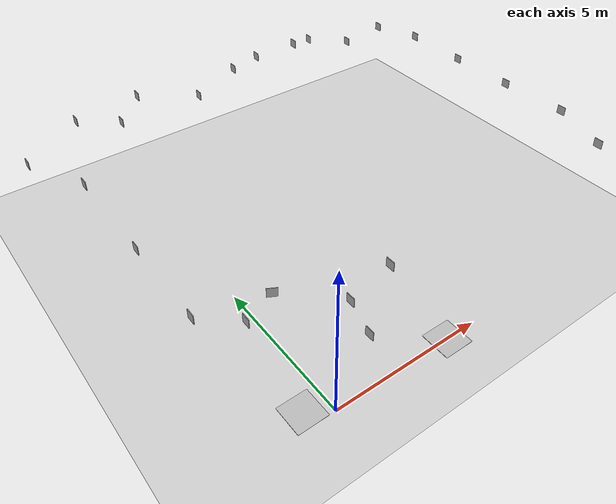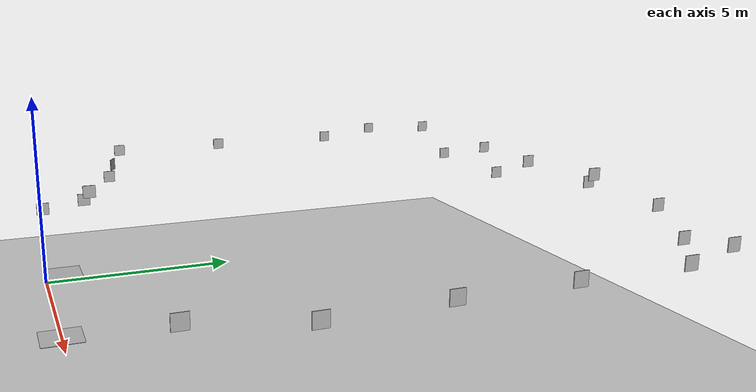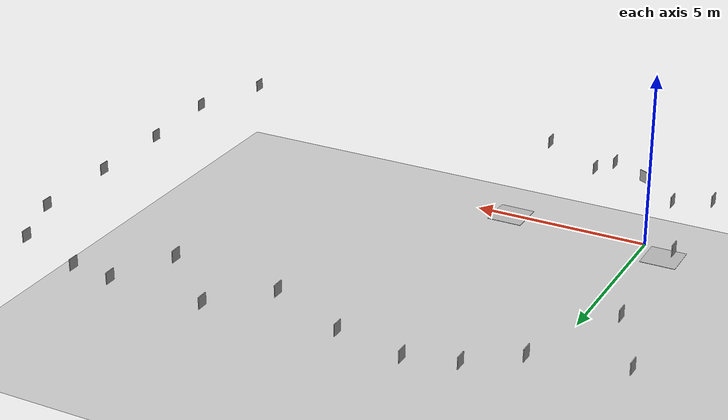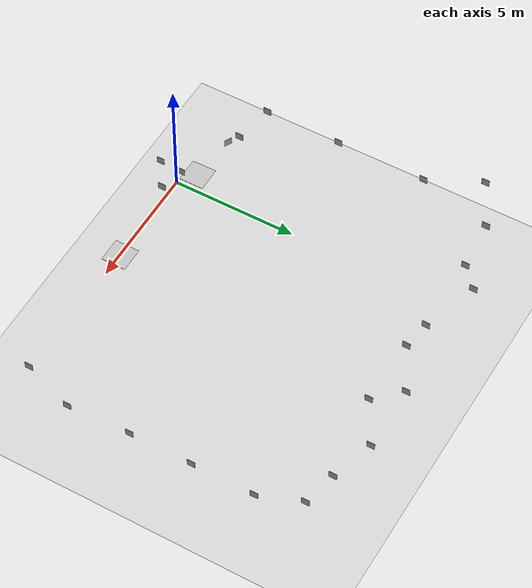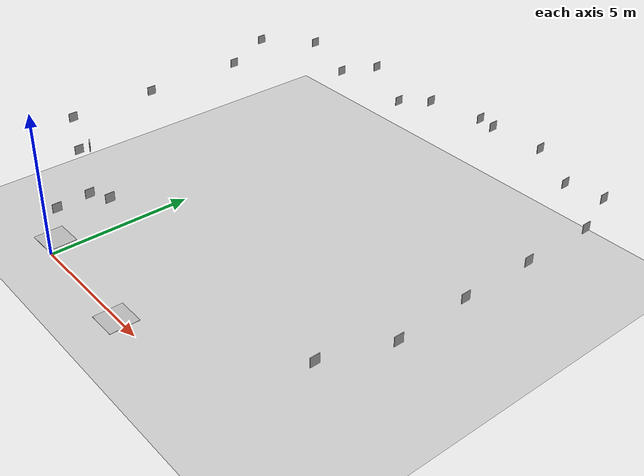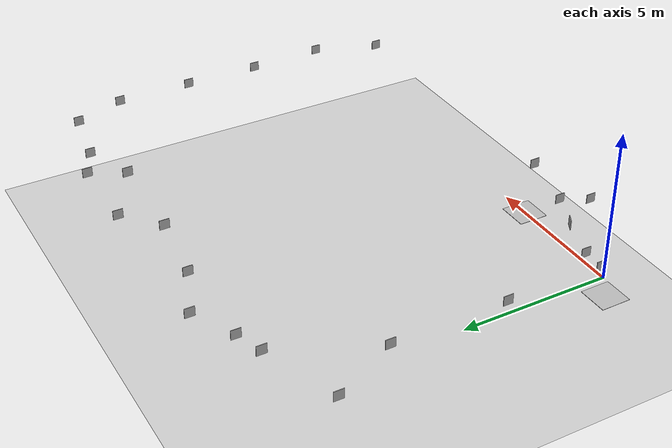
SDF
<sdf version="1.6">
 <world name="default">
  <model name="ground_plane">
   <static>1</static>
   <link name="link">
    <collision name="collision">
     <geometry><plane><normal>0 0 1</normal><size>100 100</size></plane></geometry>
     <surface>
      <contact><collide_bitmask>65535</collide_bitmask></contact>
      <friction><ode><mu>100</mu><mu2>50</mu2></ode></friction>
     </surface>
    </collision>
    <visual name="visual">
     <cast_shadows>0</cast_shadows>
     <geometry><plane><normal>0 0 1</normal><size>100 100</size></plane></geometry>
     <material>
      <script><uri>file://media/materials/scripts/gazebo.material</uri><name>Gazebo/Grey</name></script>
     </material>
    </visual>
   </link>
  </model>
  <light name="sun" type="directional">
   <pose>0 0 10 0 -0 0</pose>
   <diffuse>0.8 0.8 0.8 1</diffuse>
   <specular>0.2 0.2 0.2 1</specular>
   <attenuation>
    <range>1000</range>
    <constant>0.9</constant>
    <linear>0.01</linear>
    <quadratic>0.001</quadratic>
   </attenuation>
   <direction>-0.5 0.1 -0.9</direction>
  </light>
  <model name="color_beacon">
   <link name="link_1">
    <inertial>
     <mass>1</mass>
     <inertia>
      <ixx>0.166667</ixx>
      <ixy>0</ixy>
      <ixz>0</ixz>
      <iyy>0.166667</iyy>
      <iyz>0</iyz>
      <izz>0.166667</izz>
     </inertia>
    </inertial>
    <visual name="visual">
     <geometry><box><size>1 1 0.01</size></box></geometry>
     <material>
      <script>
       <uri>model://color_beacon/materials/scripts</uri>
       <uri>model://color_beacon/materials/textures</uri>
       <name>color_beacon</name>
      </script>
     </material>
    </visual>
    <collision name="collision">
     <geometry><box><size>1 1 0.01</size></box></geometry>
     <surface>
      <friction>
       <ode><mu>1</mu><mu2>1</mu2><fdir1>0 0 0</fdir1><slip1>0</slip1><slip2>0</slip2></ode>
       <torsional>
        <coefficient>1</coefficient>
        <patch_radius>0</patch_radius>
        <surface_radius>0</surface_radius>
        <use_patch_radius>1</use_patch_radius>
        <ode><slip>0</slip></ode>
       </torsional>
      </friction>
      <bounce><restitution_coefficient>0</restitution_coefficient><threshold>1e+06</threshold></bounce>
      <contact>
       <collide_without_contact>0</collide_without_contact>
       <collide_without_contact_bitmask>1</collide_without_contact_bitmask>
       <collide_bitmask>1</collide_bitmask>
       <ode>
        <soft_cfm>0</soft_cfm>
        <soft_erp>0.2</soft_erp>
        <kp>1e+13</kp>
        <kd>1</kd>
        <max_vel>0.01</max_vel>
        <min_depth>0</min_depth>
       </ode>
       <bullet>
        <split_impulse>1</split_impulse>
        <split_impulse_penetration_threshold>-0.01</split_impulse_penetration_threshold>
        <soft_cfm>0</soft_cfm>
        <soft_erp>0.2</soft_erp>
        <kp>1e+13</kp>
        <kd>1</kd>
       </bullet>
      </contact>
     </surface>
    </collision>
   </link>
   <static>0</static>
   <pose>4 0 0.005 0 -0 0</pose>
  </model>
  <model name="posAprilTags">
   <model name="tag_0">
    <pose>-0.5 2 3 -2.07079 -1.57079 3.14159</pose>
    <static>1</static>
    <link name="link">
     <collision name="collision"><geometry><box><size>0.3 0.3 0.02</size></box></geometry></collision>
     <visual name="visual">
      <geometry><box><size>0.3 0.3 0.02</size></box></geometry>
      <material>
       <script><uri>file://tags_material/scripts/tags.material</uri><name>Tag36_11_00000</name></script>
      </material>
     </visual>
    </link>
    <static>0</static>
   </model>
   <model name="tag_1">
    <pose>2.5 1 3 3.14159 -1.57079 3.14159</pose>
    <static>1</static>
    <link name="link">
     <collision name="collision"><geometry><box><size>0.3 0.3 0.02</size></box></geometry></collision>
     <visual name="visual">
      <geometry><box><size>0.3 0.3 0.02</size></box></geometry>
      <material>
       <script><uri>file://tags_material/scripts/tags.material</uri><name>Tag36_11_00001</name></script>
      </material>
     </visual>
    </link>
    <static>0</static>
   </model>
   <model name="tag_2">
    <pose>-2.5 9 3 3.14159 -1.57079 3.14159</pose>
    <static>1</static>
    <link name="link">
     <collision name="collision"><geometry><box><size>0.3 0.3 0.02</size></box></geometry></collision>
     <visual name="visual">
      <geometry><box><size>0.3 0.3 0.02</size></box></geometry>
      <material>
       <script><uri>file://tags_material/scripts/tags.material</uri><name>Tag36_11_00002</name></script>
      </material>
     </visual>
    </link>
    <static>0</static>
   </model>
   <model name="tag_3">
    <pose>-1.5 12 3.3 3.14159 -1.57079 3.14159</pose>
    <static>1</static>
    <link name="link">
     <collision name="collision"><geometry><box><size>0.3 0.3 0.02</size></box></geometry></collision>
     <visual name="visual">
      <geometry><box><size>0.3 0.3 0.02</size></box></geometry>
      <material>
       <script><uri>file://tags_material/scripts/tags.material</uri><name>Tag36_11_00003</name></script>
      </material>
     </visual>
    </link>
    <static>0</static>
   </model>
   <model name="tag_4">
    <pose>1 12.8 3 3.14159 -1.57079 3.14159</pose>
    <static>1</static>
    <link name="link">
     <collision name="collision"><geometry><box><size>0.3 0.3 0.02</size></box></geometry></collision>
     <visual name="visual">
      <geometry><box><size>0.3 0.3 0.02</size></box></geometry>
      <material>
       <script><uri>file://tags_material/scripts/tags.material</uri><name>Tag36_11_00004</name></script>
      </material>
     </visual>
    </link>
    <static>0</static>
   </model>
   <model name="tag_5">
    <pose>-2.5 5.5 3 3.14159 -1.57079 3.14159</pose>
    <static>1</static>
    <link name="link">
     <collision name="collision"><geometry><box><size>0.3 0.3 0.02</size></box></geometry></collision>
     <visual name="visual">
      <geometry><box><size>0.3 0.3 0.02</size></box></geometry>
      <material>
       <script><uri>file://tags_material/scripts/tags.material</uri><name>Tag36_11_00005</name></script>
      </material>
     </visual>
    </link>
    <static>0</static>
   </model>
   <model name="tag_6">
    <pose>6 12.8 3 3.14159 -1.57079 3.14159</pose>
    <static>1</static>
    <link name="link">
     <collision name="collision"><geometry><box><size>0.3 0.3 0.02</size></box></geometry></collision>
     <visual name="visual">
      <geometry><box><size>0.3 0.3 0.02</size></box></geometry>
      <material>
       <script><uri>file://tags_material/scripts/tags.material</uri><name>Tag36_11_00006</name></script>
      </material>
     </visual>
    </link>
    <static>0</static>
   </model>
   <model name="tag_7">
    <pose>0 12 2.7 3.14159 -1.57079 3.14159</pose>
    <static>1</static>
    <link name="link">
     <collision name="collision"><geometry><box><size>0.3 0.3 0.02</size></box></geometry></collision>
     <visual name="visual">
      <geometry><box><size>0.3 0.3 0.02</size></box></geometry>
      <material>
       <script><uri>file://tags_material/scripts/tags.material</uri><name>Tag36_11_00007</name></script>
      </material>
     </visual>
    </link>
    <static>0</static>
   </model>
   <model name="tag_8">
    <pose>12.1 10.4 3 3.14159 -1.57079 3.14159</pose>
    <static>1</static>
    <link name="link">
     <collision name="collision"><geometry><box><size>0.3 0.3 0.02</size></box></geometry></collision>
     <visual name="visual">
      <geometry><box><size>0.3 0.3 0.02</size></box></geometry>
      <material>
       <script><uri>file://tags_material/scripts/tags.material</uri><name>Tag36_11_00008</name></script>
      </material>
     </visual>
    </link>
    <static>0</static>
   </model>
   <model name="tag_9">
    <pose>11.5 12 3 3.14159 -1.57079 3.14159</pose>
    <static>1</static>
    <link name="link">
     <collision name="collision"><geometry><box><size>0.3 0.3 0.02</size></box></geometry></collision>
     <visual name="visual">
      <geometry><box><size>0.3 0.3 0.02</size></box></geometry>
      <material>
       <script><uri>file://tags_material/scripts/tags.material</uri><name>Tag36_11_00009</name></script>
      </material>
     </visual>
    </link>
    <static>0</static>
   </model>
   <model name="tag_10">
    <pose>12.1 5.6 3 3.14159 -1.57079 3.14159</pose>
    <static>1</static>
    <link name="link">
     <collision name="collision"><geometry><box><size>0.3 0.3 0.02</size></box></geometry></collision>
     <visual name="visual">
      <geometry><box><size>0.3 0.3 0.02</size></box></geometry>
      <material>
       <script><uri>file://tags_material/scripts/tags.material</uri><name>Tag36_11_00010</name></script>
      </material>
     </visual>
    </link>
    <static>0</static>
   </model>
   <model name="tag_11">
    <pose>10 12.2 2.7 3.14159 -1.57079 3.14159</pose>
    <static>1</static>
    <link name="link">
     <collision name="collision"><geometry><box><size>0.3 0.3 0.02</size></box></geometry></collision>
     <visual name="visual">
      <geometry><box><size>0.3 0.3 0.02</size></box></geometry>
      <material>
       <script><uri>file://tags_material/scripts/tags.material</uri><name>Tag36_11_00011</name></script>
      </material>
     </visual>
    </link>
    <static>0</static>
   </model>
   <model name="tag_12">
    <pose>3 12 2.7 3.14159 -1.57079 3.14159</pose>
    <static>1</static>
    <link name="link">
     <collision name="collision"><geometry><box><size>0.3 0.3 0.02</size></box></geometry></collision>
     <visual name="visual">
      <geometry><box><size>0.3 0.3 0.02</size></box></geometry>
      <material>
       <script><uri>file://tags_material/scripts/tags.material</uri><name>Tag36_11_00012</name></script>
      </material>
     </visual>
    </link>
    <static>0</static>
   </model>
   <model name="tag_13">
    <pose>12.1 8 3 3.14159 -1.57079 3.14159</pose>
    <static>1</static>
    <link name="link">
     <collision name="collision"><geometry><box><size>0.02 0.3 0.3</size></box></geometry></collision>
     <visual name="visual">
      <geometry><box><size>0.3 0.3 0.02</size></box></geometry>
      <material>
       <script><uri>file://tags_material/scripts/tags.material</uri><name>Tag36_11_00013</name></script>
      </material>
     </visual>
    </link>
    <static>0</static>
   </model>
   <model name="tag_14">
    <pose>12.2 3.2 3 3.14159 -1.57079 3.14159</pose>
    <static>1</static>
    <link name="link">
     <collision name="collision"><geometry><box><size>0.3 0.02 0.3</size></box></geometry></collision>
     <visual name="visual">
      <geometry><box><size>0.3 0.3 0.02</size></box></geometry>
      <material>
       <script><uri>file://tags_material/scripts/tags.material</uri><name>Tag36_11_00014</name></script>
      </material>
     </visual>
    </link>
    <static>0</static>
   </model>
   <model name="tag_15">
    <pose>-1.3 2 2.5 3.14159 -1.57079 3.14159</pose>
    <static>1</static>
    <link name="link">
     <collision name="collision"><geometry><box><size>0.02 0.3 0.3</size></box></geometry></collision>
     <visual name="visual">
      <geometry><box><size>0.3 0.3 0.02</size></box></geometry>
      <material>
       <script><uri>file://tags_material/scripts/tags.material</uri><name>Tag36_11_00015</name></script>
      </material>
     </visual>
    </link>
    <static>0</static>
   </model>
   <model name="tag_16">
    <pose>11.5 1.2 3 3.14159 -1.57079 3.14159</pose>
    <static>1</static>
    <link name="link">
     <collision name="collision"><geometry><box><size>0.3 0.3 0.02</size></box></geometry></collision>
     <visual name="visual">
      <geometry><box><size>0.3 0.3 0.02</size></box></geometry>
      <material>
       <script><uri>file://tags_material/scripts/tags.material</uri><name>Tag36_11_00016</name></script>
      </material>
     </visual>
    </link>
    <static>0</static>
   </model>
   <model name="tag_17">
    <pose>1 0 2.3 3.14159 -1.57079 3.14159</pose>
    <static>1</static>
    <link name="link">
     <collision name="collision"><geometry><box><size>0.3 0.3 0.02</size></box></geometry></collision>
     <visual name="visual">
      <geometry><box><size>0.3 0.3 0.02</size></box></geometry>
      <material>
       <script><uri>file://tags_material/scripts/tags.material</uri><name>Tag36_11_00035</name></script>
      </material>
     </visual>
    </link>
    <static>0</static>
   </model>
   <model name="tag_18">
    <pose>-2.5 2.5 3 3.14159 -1.57079 3.14159</pose>
    <static>1</static>
    <link name="link">
     <collision name="collision"><geometry><box><size>0.3 0.3 0.02</size></box></geometry></collision>
     <visual name="visual">
      <geometry><box><size>0.3 0.3 0.02</size></box></geometry>
      <material>
       <script><uri>file://tags_material/scripts/tags.material</uri><name>Tag36_11_00018</name></script>
      </material>
     </visual>
    </link>
    <static>0</static>
   </model>
   <model name="tag_19">
    <pose>7.2 12 3.5 3.14159 -1.57079 3.14159</pose>
    <static>1</static>
    <link name="link">
     <collision name="collision"><geometry><box><size>0.3 0.3 0.02</size></box></geometry></collision>
     <visual name="visual">
      <geometry><box><size>0.3 0.3 0.02</size></box></geometry>
      <material>
       <script><uri>file://tags_material/scripts/tags.material</uri><name>Tag36_11_00019</name></script>
      </material>
     </visual>
    </link>
    <static>0</static>
   </model>
   <model name="tag_20">
    <pose>8.5 12.8 3 3.14159 -1.57079 3.14159</pose>
    <static>1</static>
    <link name="link">
     <collision name="collision"><geometry><box><size>0.3 0.3 0.02</size></box></geometry></collision>
     <visual name="visual">
      <geometry><box><size>0.3 0.3 0.02</size></box></geometry>
      <material>
       <script><uri>file://tags_material/scripts/tags.material</uri><name>Tag36_11_00020</name></script>
      </material>
     </visual>
    </link>
    <static>0</static>
   </model>
   <model name="tag_21">
    <pose>-3.5 11 3 3.14159 -1.57079 3.14159</pose>
    <static>1</static>
    <link name="link">
     <collision name="collision"><geometry><box><size>0.3 0.3 0.02</size></box></geometry></collision>
     <visual name="visual">
      <geometry><box><size>0.3 0.3 0.02</size></box></geometry>
      <material>
       <script><uri>file://tags_material/scripts/tags.material</uri><name>Tag36_11_00021</name></script>
      </material>
     </visual>
    </link>
    <static>0</static>
   </model>
   <model name="tag_22">
    <pose>4.5 12 3.3 3.14159 -1.57079 3.14159</pose>
    <static>1</static>
    <link name="link">
     <collision name="collision"><geometry><box><size>0.3 0.3 0.02</size></box></geometry></collision>
     <visual name="visual">
      <geometry><box><size>0.3 0.3 0.02</size></box></geometry>
      <material>
       <script><uri>file://tags_material/scripts/tags.material</uri><name>Tag36_11_00022</name></script>
      </material>
     </visual>
    </link>
    <static>0</static>
   </model>
   <model name="tag_23">
    <pose>1.2 1 2.5 3.14159 -1.57079 3.14159</pose>
    <static>1</static>
    <link name="link">
     <collision name="collision"><geometry><box><size>0.3 0.3 0.02</size></box></geometry></collision>
     <visual name="visual">
      <geometry><box><size>0.3 0.3 0.02</size></box></geometry>
      <material>
       <script><uri>file://tags_material/scripts/tags.material</uri><name>Tag36_11_00023</name></script>
      </material>
     </visual>
    </link>
    <static>0</static>
   </model>
  </model>
  <gravity>0 0 -9.8</gravity>
  <magnetic_field>6e-06 2.3e-05 -4.2e-05</magnetic_field>
  <atmosphere type="adiabatic"/>
  <physics name="default_physics" default="0" type="ode">
   <max_step_size>0.001</max_step_size>
   <real_time_factor>1</real_time_factor>
   <real_time_update_rate>1000</real_time_update_rate>
  </physics>
  <scene><ambient>0.4 0.4 0.4 1</ambient><background>0.7 0.7 0.7 1</background><shadows>1</shadows></scene>
  <spherical_coordinates>
   <surface_model>EARTH_WGS84</surface_model>
   <latitude_deg>0</latitude_deg>
   <longitude_deg>0</longitude_deg>
   <elevation>0</elevation>
   <heading_deg>0</heading_deg>
  </spherical_coordinates>
  <model name="color_beacon_0">
   <link name="link_1">
    <inertial>
     <mass>1</mass>
     <inertia>
      <ixx>0.166667</ixx>
      <ixy>0</ixy>
      <ixz>0</ixz>
      <iyy>0.166667</iyy>
      <iyz>0</iyz>
      <izz>0.166667</izz>
     </inertia>
    </inertial>
    <visual name="visual">
     <geometry><box><size>1 1 0.01</size></box></geometry>
     <material>
      <script>
       <uri>model://color_beacon/materials/scripts</uri>
       <uri>model://color_beacon/materials/textures</uri>
       <name>color_beacon</name>
      </script>
     </material>
    </visual>
    <collision name="collision">
     <geometry><box><size>1 1 0.01</size></box></geometry>
     <surface>
      <friction>
       <ode><mu>1</mu><mu2>1</mu2><fdir1>0 0 0</fdir1><slip1>0</slip1><slip2>0</slip2></ode>
       <torsional>
        <coefficient>1</coefficient>
        <patch_radius>0</patch_radius>
        <surface_radius>0</surface_radius>
        <use_patch_radius>1</use_patch_radius>
        <ode><slip>0</slip></ode>
       </torsional>
      </friction>
      <bounce><restitution_coefficient>0</restitution_coefficient><threshold>1e+06</threshold></bounce>
      <contact>
       <collide_without_contact>0</collide_without_contact>
       <collide_without_contact_bitmask>1</collide_without_contact_bitmask>
       <collide_bitmask>1</collide_bitmask>
       <ode>
        <soft_cfm>0</soft_cfm>
        <soft_erp>0.2</soft_erp>
        <kp>1e+13</kp>
        <kd>1</kd>
        <max_vel>0.01</max_vel>
        <min_depth>0</min_depth>
       </ode>
       <bullet>
        <split_impulse>1</split_impulse>
        <split_impulse_penetration_threshold>-0.01</split_impulse_penetration_threshold>
        <soft_cfm>0</soft_cfm>
        <soft_erp>0.2</soft_erp>
        <kp>1e+13</kp>
        <kd>1</kd>
       </bullet>
      </contact>
     </surface>
    </collision>
   </link>
   <static>0</static>
   <pose>-0.704278 0.500158 0.004979 -2.3e-05 1.8e-05 0.007564</pose>
  </model>
  <light name="user_directional_light_0" type="directional">
   <pose>-9.18673 7.29832 1 0 -0 0</pose>
   <diffuse>0.5 0.5 0.5 1</diffuse>
   <specular>0.1 0.1 0.1 1</specular>
   <direction>0.1 0.1 -0.9</direction>
   <attenuation>
    <range>20</range>
    <constant>0.5</constant>
    <linear>0.01</linear>
    <quadratic>0.001</quadratic>
   </attenuation>
  </light>
 </world>
</sdf>
